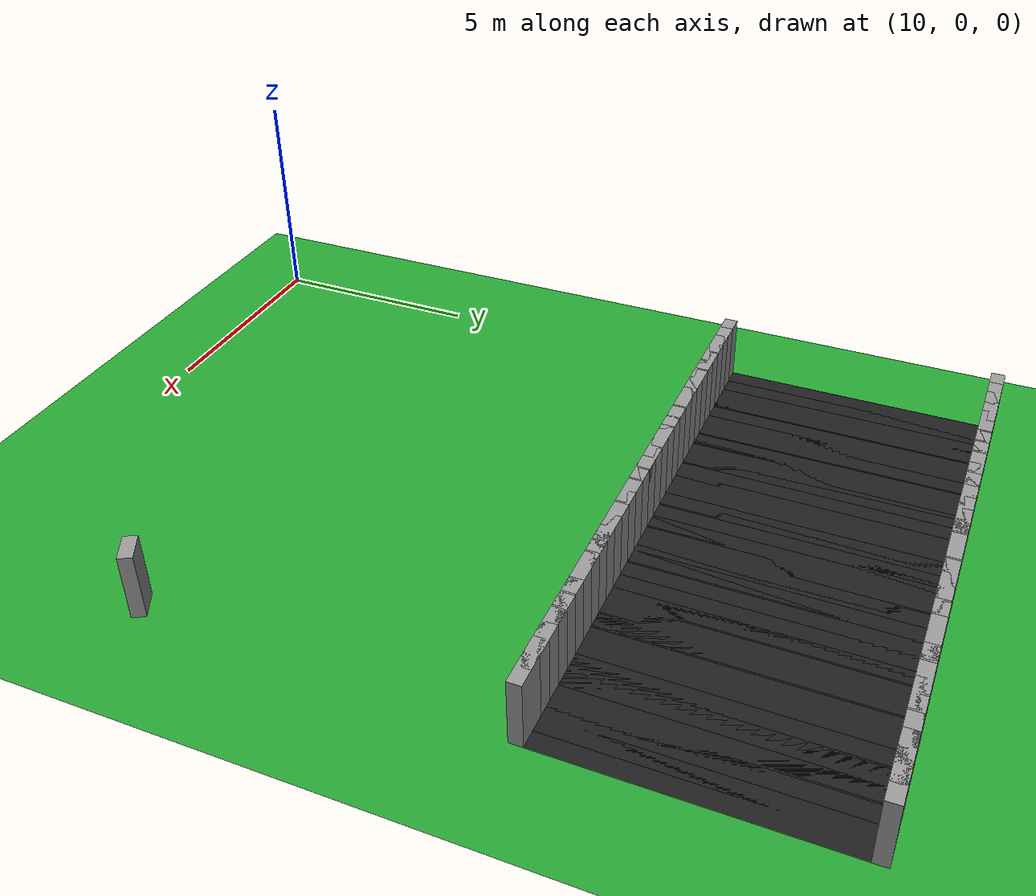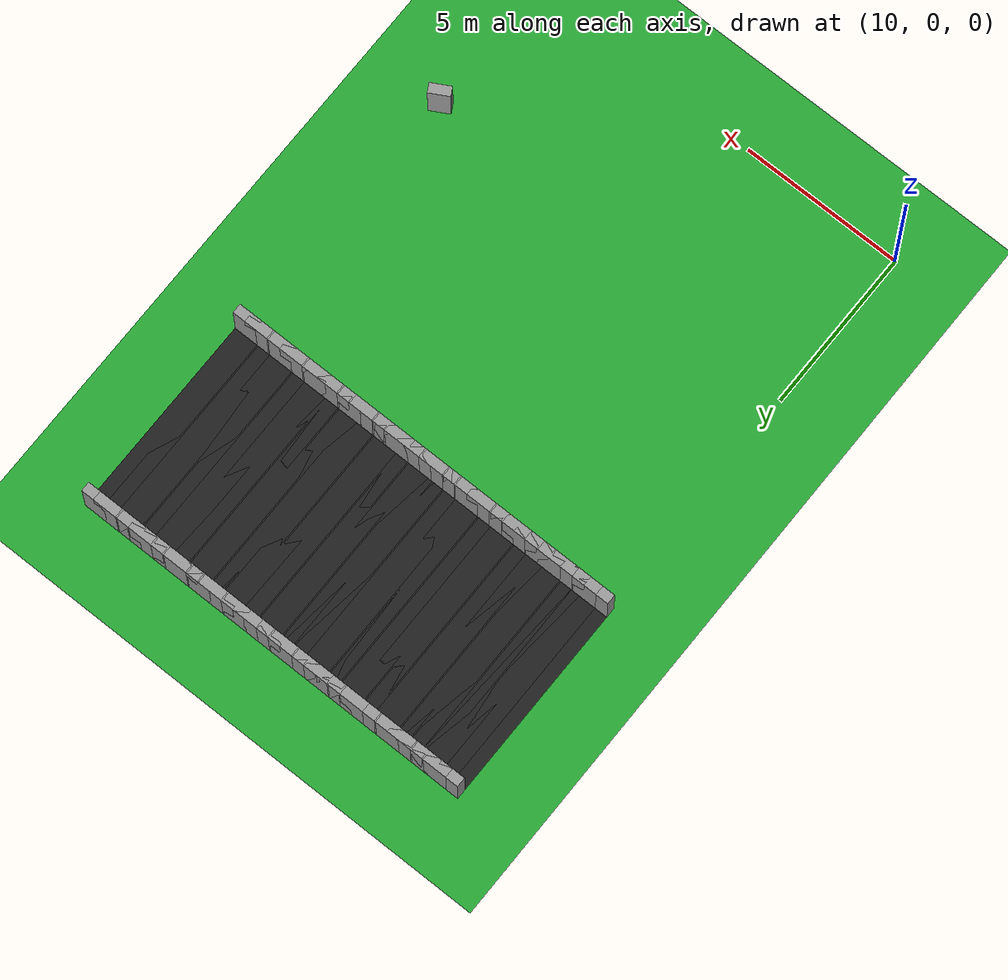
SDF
<sdf version="1.6">
 <world name="loop_road">
  <include><uri>model://sun</uri></include>
  <model name="ground_plane">
   <static>true</static>
   <link name="link">
    <collision name="collision">
     <surface><friction><ode><mu>100</mu><mu2>50</mu2></ode></friction></surface>
     <geometry><plane><normal>0 0 1</normal><size>120 120</size></plane></geometry>
    </collision>
    <visual name="visual">
     <geometry><plane><normal>0 0 1</normal><size>120 120</size></plane></geometry>
     <material>
      <script><uri>file://media/materials/scripts/gazebo.material</uri><name>Gazebo/Green</name></script>
     </material>
    </visual>
   </link>
  </model>
  <model name="curbL_60">
   <static>true</static>
   <pose>22.299 4.265 0.750 0 0 0.50724</pose>
   <link name="link">
    <collision name="collision"><geometry><box><size>0.650 0.300 1.500</size></box></geometry></collision>
    <visual name="visual">
     <geometry><box><size>0.650 0.300 1.500</size></box></geometry>
     <material>
      <script><uri>file://media/materials/scripts/gazebo.material</uri><name>Gazebo/Grey</name></script>
     </material>
    </visual>
   </link>
  </model>
  <model name="asphalt_120">
   <static>true</static>
   <pose>22.285 15.588 0.005 0 0 3.14159</pose>
   <link name="link">
    <visual name="visual">
     <geometry><box><size>0.760 6.000 0.010</size></box></geometry>
     <material>
      <script><uri>file://media/materials/scripts/gazebo.material</uri><name>Gazebo/Black</name></script>
     </material>
    </visual>
   </link>
  </model>
  <model name="curbL_120">
   <static>true</static>
   <pose>22.285 12.438 0.750 0 0 3.14159</pose>
   <link name="link">
    <collision name="collision"><geometry><box><size>0.760 0.300 1.500</size></box></geometry></collision>
    <visual name="visual">
     <geometry><box><size>0.760 0.300 1.500</size></box></geometry>
     <material>
      <script><uri>file://media/materials/scripts/gazebo.material</uri><name>Gazebo/Grey</name></script>
     </material>
    </visual>
   </link>
  </model>
  <model name="curbR_120">
   <static>true</static>
   <pose>22.285 18.738 0.750 0 0 3.14159</pose>
   <link name="link">
    <collision name="collision"><geometry><box><size>0.760 0.300 1.500</size></box></geometry></collision>
    <visual name="visual">
     <geometry><box><size>0.760 0.300 1.500</size></box></geometry>
     <material>
      <script><uri>file://media/materials/scripts/gazebo.material</uri><name>Gazebo/Grey</name></script>
     </material>
    </visual>
   </link>
  </model>
  <model name="asphalt_121">
   <static>true</static>
   <pose>21.885 15.588 0.005 0 0 3.14159</pose>
   <link name="link">
    <visual name="visual">
     <geometry><box><size>0.760 6.000 0.010</size></box></geometry>
     <material>
      <script><uri>file://media/materials/scripts/gazebo.material</uri><name>Gazebo/Black</name></script>
     </material>
    </visual>
   </link>
  </model>
  <model name="curbL_121">
   <static>true</static>
   <pose>21.885 12.438 0.750 0 0 3.14159</pose>
   <link name="link">
    <collision name="collision"><geometry><box><size>0.760 0.300 1.500</size></box></geometry></collision>
    <visual name="visual">
     <geometry><box><size>0.760 0.300 1.500</size></box></geometry>
     <material>
      <script><uri>file://media/materials/scripts/gazebo.material</uri><name>Gazebo/Grey</name></script>
     </material>
    </visual>
   </link>
  </model>
  <model name="curbR_121">
   <static>true</static>
   <pose>21.885 18.738 0.750 0 0 3.14159</pose>
   <link name="link">
    <collision name="collision"><geometry><box><size>0.760 0.300 1.500</size></box></geometry></collision>
    <visual name="visual">
     <geometry><box><size>0.760 0.300 1.500</size></box></geometry>
     <material>
      <script><uri>file://media/materials/scripts/gazebo.material</uri><name>Gazebo/Grey</name></script>
     </material>
    </visual>
   </link>
  </model>
  <model name="asphalt_122">
   <static>true</static>
   <pose>21.485 15.588 0.005 0 0 3.14159</pose>
   <link name="link">
    <visual name="visual">
     <geometry><box><size>0.760 6.000 0.010</size></box></geometry>
     <material>
      <script><uri>file://media/materials/scripts/gazebo.material</uri><name>Gazebo/Black</name></script>
     </material>
    </visual>
   </link>
  </model>
  <model name="curbL_122">
   <static>true</static>
   <pose>21.485 12.438 0.750 0 0 3.14159</pose>
   <link name="link">
    <collision name="collision"><geometry><box><size>0.760 0.300 1.500</size></box></geometry></collision>
    <visual name="visual">
     <geometry><box><size>0.760 0.300 1.500</size></box></geometry>
     <material>
      <script><uri>file://media/materials/scripts/gazebo.material</uri><name>Gazebo/Grey</name></script>
     </material>
    </visual>
   </link>
  </model>
  <model name="curbR_122">
   <static>true</static>
   <pose>21.485 18.738 0.750 0 0 3.14159</pose>
   <link name="link">
    <collision name="collision"><geometry><box><size>0.760 0.300 1.500</size></box></geometry></collision>
    <visual name="visual">
     <geometry><box><size>0.760 0.300 1.500</size></box></geometry>
     <material>
      <script><uri>file://media/materials/scripts/gazebo.material</uri><name>Gazebo/Grey</name></script>
     </material>
    </visual>
   </link>
  </model>
  <model name="asphalt_123">
   <static>true</static>
   <pose>21.085 15.588 0.005 0 0 3.14159</pose>
   <link name="link">
    <visual name="visual">
     <geometry><box><size>0.760 6.000 0.010</size></box></geometry>
     <material>
      <script><uri>file://media/materials/scripts/gazebo.material</uri><name>Gazebo/Black</name></script>
     </material>
    </visual>
   </link>
  </model>
  <model name="curbL_123">
   <static>true</static>
   <pose>21.085 12.438 0.750 0 0 3.14159</pose>
   <link name="link">
    <collision name="collision"><geometry><box><size>0.760 0.300 1.500</size></box></geometry></collision>
    <visual name="visual">
     <geometry><box><size>0.760 0.300 1.500</size></box></geometry>
     <material>
      <script><uri>file://media/materials/scripts/gazebo.material</uri><name>Gazebo/Grey</name></script>
     </material>
    </visual>
   </link>
  </model>
  <model name="curbR_123">
   <static>true</static>
   <pose>21.085 18.738 0.750 0 0 3.14159</pose>
   <link name="link">
    <collision name="collision"><geometry><box><size>0.760 0.300 1.500</size></box></geometry></collision>
    <visual name="visual">
     <geometry><box><size>0.760 0.300 1.500</size></box></geometry>
     <material>
      <script><uri>file://media/materials/scripts/gazebo.material</uri><name>Gazebo/Grey</name></script>
     </material>
    </visual>
   </link>
  </model>
  <model name="asphalt_124">
   <static>true</static>
   <pose>20.685 15.588 0.005 0 0 3.14159</pose>
   <link name="link">
    <visual name="visual">
     <geometry><box><size>0.760 6.000 0.010</size></box></geometry>
     <material>
      <script><uri>file://media/materials/scripts/gazebo.material</uri><name>Gazebo/Black</name></script>
     </material>
    </visual>
   </link>
  </model>
  <model name="curbL_124">
   <static>true</static>
   <pose>20.685 12.438 0.750 0 0 3.14159</pose>
   <link name="link">
    <collision name="collision"><geometry><box><size>0.760 0.300 1.500</size></box></geometry></collision>
    <visual name="visual">
     <geometry><box><size>0.760 0.300 1.500</size></box></geometry>
     <material>
      <script><uri>file://media/materials/scripts/gazebo.material</uri><name>Gazebo/Grey</name></script>
     </material>
    </visual>
   </link>
  </model>
  <model name="curbR_124">
   <static>true</static>
   <pose>20.685 18.738 0.750 0 0 3.14159</pose>
   <link name="link">
    <collision name="collision"><geometry><box><size>0.760 0.300 1.500</size></box></geometry></collision>
    <visual name="visual">
     <geometry><box><size>0.760 0.300 1.500</size></box></geometry>
     <material>
      <script><uri>file://media/materials/scripts/gazebo.material</uri><name>Gazebo/Grey</name></script>
     </material>
    </visual>
   </link>
  </model>
  <model name="asphalt_125">
   <static>true</static>
   <pose>20.285 15.588 0.005 0 0 3.14159</pose>
   <link name="link">
    <visual name="visual">
     <geometry><box><size>0.760 6.000 0.010</size></box></geometry>
     <material>
      <script><uri>file://media/materials/scripts/gazebo.material</uri><name>Gazebo/Black</name></script>
     </material>
    </visual>
   </link>
  </model>
  <model name="curbL_125">
   <static>true</static>
   <pose>20.285 12.438 0.750 0 0 3.14159</pose>
   <link name="link">
    <collision name="collision"><geometry><box><size>0.760 0.300 1.500</size></box></geometry></collision>
    <visual name="visual">
     <geometry><box><size>0.760 0.300 1.500</size></box></geometry>
     <material>
      <script><uri>file://media/materials/scripts/gazebo.material</uri><name>Gazebo/Grey</name></script>
     </material>
    </visual>
   </link>
  </model>
  <model name="curbR_125">
   <static>true</static>
   <pose>20.285 18.738 0.750 0 0 3.14159</pose>
   <link name="link">
    <collision name="collision"><geometry><box><size>0.760 0.300 1.500</size></box></geometry></collision>
    <visual name="visual">
     <geometry><box><size>0.760 0.300 1.500</size></box></geometry>
     <material>
      <script><uri>file://media/materials/scripts/gazebo.material</uri><name>Gazebo/Grey</name></script>
     </material>
    </visual>
   </link>
  </model>
  <model name="asphalt_126">
   <static>true</static>
   <pose>19.885 15.588 0.005 0 0 3.14159</pose>
   <link name="link">
    <visual name="visual">
     <geometry><box><size>0.760 6.000 0.010</size></box></geometry>
     <material>
      <script><uri>file://media/materials/scripts/gazebo.material</uri><name>Gazebo/Black</name></script>
     </material>
    </visual>
   </link>
  </model>
  <model name="curbL_126">
   <static>true</static>
   <pose>19.885 12.438 0.750 0 0 3.14159</pose>
   <link name="link">
    <collision name="collision"><geometry><box><size>0.760 0.300 1.500</size></box></geometry></collision>
    <visual name="visual">
     <geometry><box><size>0.760 0.300 1.500</size></box></geometry>
     <material>
      <script><uri>file://media/materials/scripts/gazebo.material</uri><name>Gazebo/Grey</name></script>
     </material>
    </visual>
   </link>
  </model>
  <model name="curbR_126">
   <static>true</static>
   <pose>19.885 18.738 0.750 0 0 3.14159</pose>
   <link name="link">
    <collision name="collision"><geometry><box><size>0.760 0.300 1.500</size></box></geometry></collision>
    <visual name="visual">
     <geometry><box><size>0.760 0.300 1.500</size></box></geometry>
     <material>
      <script><uri>file://media/materials/scripts/gazebo.material</uri><name>Gazebo/Grey</name></script>
     </material>
    </visual>
   </link>
  </model>
  <model name="asphalt_127">
   <static>true</static>
   <pose>19.485 15.588 0.005 0 0 3.14159</pose>
   <link name="link">
    <visual name="visual">
     <geometry><box><size>0.760 6.000 0.010</size></box></geometry>
     <material>
      <script><uri>file://media/materials/scripts/gazebo.material</uri><name>Gazebo/Black</name></script>
     </material>
    </visual>
   </link>
  </model>
  <model name="curbL_127">
   <static>true</static>
   <pose>19.485 12.438 0.750 0 0 3.14159</pose>
   <link name="link">
    <collision name="collision"><geometry><box><size>0.760 0.300 1.500</size></box></geometry></collision>
    <visual name="visual">
     <geometry><box><size>0.760 0.300 1.500</size></box></geometry>
     <material>
      <script><uri>file://media/materials/scripts/gazebo.material</uri><name>Gazebo/Grey</name></script>
     </material>
    </visual>
   </link>
  </model>
  <model name="curbR_127">
   <static>true</static>
   <pose>19.485 18.738 0.750 0 0 3.14159</pose>
   <link name="link">
    <collision name="collision"><geometry><box><size>0.760 0.300 1.500</size></box></geometry></collision>
    <visual name="visual">
     <geometry><box><size>0.760 0.300 1.500</size></box></geometry>
     <material>
      <script><uri>file://media/materials/scripts/gazebo.material</uri><name>Gazebo/Grey</name></script>
     </material>
    </visual>
   </link>
  </model>
  <model name="asphalt_128">
   <static>true</static>
   <pose>19.085 15.588 0.005 0 0 3.14159</pose>
   <link name="link">
    <visual name="visual">
     <geometry><box><size>0.760 6.000 0.010</size></box></geometry>
     <material>
      <script><uri>file://media/materials/scripts/gazebo.material</uri><name>Gazebo/Black</name></script>
     </material>
    </visual>
   </link>
  </model>
  <model name="curbL_128">
   <static>true</static>
   <pose>19.085 12.438 0.750 0 0 3.14159</pose>
   <link name="link">
    <collision name="collision"><geometry><box><size>0.760 0.300 1.500</size></box></geometry></collision>
    <visual name="visual">
     <geometry><box><size>0.760 0.300 1.500</size></box></geometry>
     <material>
      <script><uri>file://media/materials/scripts/gazebo.material</uri><name>Gazebo/Grey</name></script>
     </material>
    </visual>
   </link>
  </model>
  <model name="curbR_128">
   <static>true</static>
   <pose>19.085 18.738 0.750 0 0 3.14159</pose>
   <link name="link">
    <collision name="collision"><geometry><box><size>0.760 0.300 1.500</size></box></geometry></collision>
    <visual name="visual">
     <geometry><box><size>0.760 0.300 1.500</size></box></geometry>
     <material>
      <script><uri>file://media/materials/scripts/gazebo.material</uri><name>Gazebo/Grey</name></script>
     </material>
    </visual>
   </link>
  </model>
  <model name="asphalt_129">
   <static>true</static>
   <pose>18.685 15.588 0.005 0 0 3.14159</pose>
   <link name="link">
    <visual name="visual">
     <geometry><box><size>0.760 6.000 0.010</size></box></geometry>
     <material>
      <script><uri>file://media/materials/scripts/gazebo.material</uri><name>Gazebo/Black</name></script>
     </material>
    </visual>
   </link>
  </model>
  <model name="curbL_129">
   <static>true</static>
   <pose>18.685 12.438 0.750 0 0 3.14159</pose>
   <link name="link">
    <collision name="collision"><geometry><box><size>0.760 0.300 1.500</size></box></geometry></collision>
    <visual name="visual">
     <geometry><box><size>0.760 0.300 1.500</size></box></geometry>
     <material>
      <script><uri>file://media/materials/scripts/gazebo.material</uri><name>Gazebo/Grey</name></script>
     </material>
    </visual>
   </link>
  </model>
  <model name="curbR_129">
   <static>true</static>
   <pose>18.685 18.738 0.750 0 0 3.14159</pose>
   <link name="link">
    <collision name="collision"><geometry><box><size>0.760 0.300 1.500</size></box></geometry></collision>
    <visual name="visual">
     <geometry><box><size>0.760 0.300 1.500</size></box></geometry>
     <material>
      <script><uri>file://media/materials/scripts/gazebo.material</uri><name>Gazebo/Grey</name></script>
     </material>
    </visual>
   </link>
  </model>
  <model name="asphalt_130">
   <static>true</static>
   <pose>18.285 15.588 0.005 0 0 3.14159</pose>
   <link name="link">
    <visual name="visual">
     <geometry><box><size>0.760 6.000 0.010</size></box></geometry>
     <material>
      <script><uri>file://media/materials/scripts/gazebo.material</uri><name>Gazebo/Black</name></script>
     </material>
    </visual>
   </link>
  </model>
  <model name="curbL_130">
   <static>true</static>
   <pose>18.285 12.438 0.750 0 0 3.14159</pose>
   <link name="link">
    <collision name="collision"><geometry><box><size>0.760 0.300 1.500</size></box></geometry></collision>
    <visual name="visual">
     <geometry><box><size>0.760 0.300 1.500</size></box></geometry>
     <material>
      <script><uri>file://media/materials/scripts/gazebo.material</uri><name>Gazebo/Grey</name></script>
     </material>
    </visual>
   </link>
  </model>
  <model name="curbR_130">
   <static>true</static>
   <pose>18.285 18.738 0.750 0 0 3.14159</pose>
   <link name="link">
    <collision name="collision"><geometry><box><size>0.760 0.300 1.500</size></box></geometry></collision>
    <visual name="visual">
     <geometry><box><size>0.760 0.300 1.500</size></box></geometry>
     <material>
      <script><uri>file://media/materials/scripts/gazebo.material</uri><name>Gazebo/Grey</name></script>
     </material>
    </visual>
   </link>
  </model>
  <model name="asphalt_131">
   <static>true</static>
   <pose>17.885 15.588 0.005 0 0 3.14159</pose>
   <link name="link">
    <visual name="visual">
     <geometry><box><size>0.760 6.000 0.010</size></box></geometry>
     <material>
      <script><uri>file://media/materials/scripts/gazebo.material</uri><name>Gazebo/Black</name></script>
     </material>
    </visual>
   </link>
  </model>
  <model name="curbL_131">
   <static>true</static>
   <pose>17.885 12.438 0.750 0 0 3.14159</pose>
   <link name="link">
    <collision name="collision"><geometry><box><size>0.760 0.300 1.500</size></box></geometry></collision>
    <visual name="visual">
     <geometry><box><size>0.760 0.300 1.500</size></box></geometry>
     <material>
      <script><uri>file://media/materials/scripts/gazebo.material</uri><name>Gazebo/Grey</name></script>
     </material>
    </visual>
   </link>
  </model>
  <model name="curbR_131">
   <static>true</static>
   <pose>17.885 18.738 0.750 0 0 3.14159</pose>
   <link name="link">
    <collision name="collision"><geometry><box><size>0.760 0.300 1.500</size></box></geometry></collision>
    <visual name="visual">
     <geometry><box><size>0.760 0.300 1.500</size></box></geometry>
     <material>
      <script><uri>file://media/materials/scripts/gazebo.material</uri><name>Gazebo/Grey</name></script>
     </material>
    </visual>
   </link>
  </model>
  <model name="asphalt_132">
   <static>true</static>
   <pose>17.485 15.588 0.005 0 0 3.14159</pose>
   <link name="link">
    <visual name="visual">
     <geometry><box><size>0.760 6.000 0.010</size></box></geometry>
     <material>
      <script><uri>file://media/materials/scripts/gazebo.material</uri><name>Gazebo/Black</name></script>
     </material>
    </visual>
   </link>
  </model>
  <model name="curbL_132">
   <static>true</static>
   <pose>17.485 12.438 0.750 0 0 3.14159</pose>
   <link name="link">
    <collision name="collision"><geometry><box><size>0.760 0.300 1.500</size></box></geometry></collision>
    <visual name="visual">
     <geometry><box><size>0.760 0.300 1.500</size></box></geometry>
     <material>
      <script><uri>file://media/materials/scripts/gazebo.material</uri><name>Gazebo/Grey</name></script>
     </material>
    </visual>
   </link>
  </model>
  <model name="curbR_132">
   <static>true</static>
   <pose>17.485 18.738 0.750 0 0 3.14159</pose>
   <link name="link">
    <collision name="collision"><geometry><box><size>0.760 0.300 1.500</size></box></geometry></collision>
    <visual name="visual">
     <geometry><box><size>0.760 0.300 1.500</size></box></geometry>
     <material>
      <script><uri>file://media/materials/scripts/gazebo.material</uri><name>Gazebo/Grey</name></script>
     </material>
    </visual>
   </link>
  </model>
  <model name="asphalt_133">
   <static>true</static>
   <pose>17.085 15.588 0.005 0 0 3.14159</pose>
   <link name="link">
    <visual name="visual">
     <geometry><box><size>0.760 6.000 0.010</size></box></geometry>
     <material>
      <script><uri>file://media/materials/scripts/gazebo.material</uri><name>Gazebo/Black</name></script>
     </material>
    </visual>
   </link>
  </model>
  <model name="curbL_133">
   <static>true</static>
   <pose>17.085 12.438 0.750 0 0 3.14159</pose>
   <link name="link">
    <collision name="collision"><geometry><box><size>0.760 0.300 1.500</size></box></geometry></collision>
    <visual name="visual">
     <geometry><box><size>0.760 0.300 1.500</size></box></geometry>
     <material>
      <script><uri>file://media/materials/scripts/gazebo.material</uri><name>Gazebo/Grey</name></script>
     </material>
    </visual>
   </link>
  </model>
  <model name="curbR_133">
   <static>true</static>
   <pose>17.085 18.738 0.750 0 0 3.14159</pose>
   <link name="link">
    <collision name="collision"><geometry><box><size>0.760 0.300 1.500</size></box></geometry></collision>
    <visual name="visual">
     <geometry><box><size>0.760 0.300 1.500</size></box></geometry>
     <material>
      <script><uri>file://media/materials/scripts/gazebo.material</uri><name>Gazebo/Grey</name></script>
     </material>
    </visual>
   </link>
  </model>
  <model name="asphalt_134">
   <static>true</static>
   <pose>16.685 15.588 0.005 0 0 3.14159</pose>
   <link name="link">
    <visual name="visual">
     <geometry><box><size>0.760 6.000 0.010</size></box></geometry>
     <material>
      <script><uri>file://media/materials/scripts/gazebo.material</uri><name>Gazebo/Black</name></script>
     </material>
    </visual>
   </link>
  </model>
  <model name="curbL_134">
   <static>true</static>
   <pose>16.685 12.438 0.750 0 0 3.14159</pose>
   <link name="link">
    <collision name="collision"><geometry><box><size>0.760 0.300 1.500</size></box></geometry></collision>
    <visual name="visual">
     <geometry><box><size>0.760 0.300 1.500</size></box></geometry>
     <material>
      <script><uri>file://media/materials/scripts/gazebo.material</uri><name>Gazebo/Grey</name></script>
     </material>
    </visual>
   </link>
  </model>
  <model name="curbR_134">
   <static>true</static>
   <pose>16.685 18.738 0.750 0 0 3.14159</pose>
   <link name="link">
    <collision name="collision"><geometry><box><size>0.760 0.300 1.500</size></box></geometry></collision>
    <visual name="visual">
     <geometry><box><size>0.760 0.300 1.500</size></box></geometry>
     <material>
      <script><uri>file://media/materials/scripts/gazebo.material</uri><name>Gazebo/Grey</name></script>
     </material>
    </visual>
   </link>
  </model>
  <model name="asphalt_135">
   <static>true</static>
   <pose>16.285 15.588 0.005 0 0 3.14159</pose>
   <link name="link">
    <visual name="visual">
     <geometry><box><size>0.760 6.000 0.010</size></box></geometry>
     <material>
      <script><uri>file://media/materials/scripts/gazebo.material</uri><name>Gazebo/Black</name></script>
     </material>
    </visual>
   </link>
  </model>
  <model name="curbL_135">
   <static>true</static>
   <pose>16.285 12.438 0.750 0 0 3.14159</pose>
   <link name="link">
    <collision name="collision"><geometry><box><size>0.760 0.300 1.500</size></box></geometry></collision>
    <visual name="visual">
     <geometry><box><size>0.760 0.300 1.500</size></box></geometry>
     <material>
      <script><uri>file://media/materials/scripts/gazebo.material</uri><name>Gazebo/Grey</name></script>
     </material>
    </visual>
   </link>
  </model>
  <model name="curbR_135">
   <static>true</static>
   <pose>16.285 18.738 0.750 0 0 3.14159</pose>
   <link name="link">
    <collision name="collision"><geometry><box><size>0.760 0.300 1.500</size></box></geometry></collision>
    <visual name="visual">
     <geometry><box><size>0.760 0.300 1.500</size></box></geometry>
     <material>
      <script><uri>file://media/materials/scripts/gazebo.material</uri><name>Gazebo/Grey</name></script>
     </material>
    </visual>
   </link>
  </model>
  <model name="asphalt_136">
   <static>true</static>
   <pose>15.885 15.588 0.005 0 0 3.14159</pose>
   <link name="link">
    <visual name="visual">
     <geometry><box><size>0.760 6.000 0.010</size></box></geometry>
     <material>
      <script><uri>file://media/materials/scripts/gazebo.material</uri><name>Gazebo/Black</name></script>
     </material>
    </visual>
   </link>
  </model>
  <model name="curbL_136">
   <static>true</static>
   <pose>15.885 12.438 0.750 0 0 3.14159</pose>
   <link name="link">
    <collision name="collision"><geometry><box><size>0.760 0.300 1.500</size></box></geometry></collision>
    <visual name="visual">
     <geometry><box><size>0.760 0.300 1.500</size></box></geometry>
     <material>
      <script><uri>file://media/materials/scripts/gazebo.material</uri><name>Gazebo/Grey</name></script>
     </material>
    </visual>
   </link>
  </model>
  <model name="curbR_136">
   <static>true</static>
   <pose>15.885 18.738 0.750 0 0 3.14159</pose>
   <link name="link">
    <collision name="collision"><geometry><box><size>0.760 0.300 1.500</size></box></geometry></collision>
    <visual name="visual">
     <geometry><box><size>0.760 0.300 1.500</size></box></geometry>
     <material>
      <script><uri>file://media/materials/scripts/gazebo.material</uri><name>Gazebo/Grey</name></script>
     </material>
    </visual>
   </link>
  </model>
  <model name="asphalt_137">
   <static>true</static>
   <pose>15.485 15.588 0.005 0 0 3.14159</pose>
   <link name="link">
    <visual name="visual">
     <geometry><box><size>0.760 6.000 0.010</size></box></geometry>
     <material>
      <script><uri>file://media/materials/scripts/gazebo.material</uri><name>Gazebo/Black</name></script>
     </material>
    </visual>
   </link>
  </model>
  <model name="curbL_137">
   <static>true</static>
   <pose>15.485 12.438 0.750 0 0 3.14159</pose>
   <link name="link">
    <collision name="collision"><geometry><box><size>0.760 0.300 1.500</size></box></geometry></collision>
    <visual name="visual">
     <geometry><box><size>0.760 0.300 1.500</size></box></geometry>
     <material>
      <script><uri>file://media/materials/scripts/gazebo.material</uri><name>Gazebo/Grey</name></script>
     </material>
    </visual>
   </link>
  </model>
  <model name="curbR_137">
   <static>true</static>
   <pose>15.485 18.738 0.750 0 0 3.14159</pose>
   <link name="link">
    <collision name="collision"><geometry><box><size>0.760 0.300 1.500</size></box></geometry></collision>
    <visual name="visual">
     <geometry><box><size>0.760 0.300 1.500</size></box></geometry>
     <material>
      <script><uri>file://media/materials/scripts/gazebo.material</uri><name>Gazebo/Grey</name></script>
     </material>
    </visual>
   </link>
  </model>
  <model name="asphalt_138">
   <static>true</static>
   <pose>15.085 15.588 0.005 0 0 3.14159</pose>
   <link name="link">
    <visual name="visual">
     <geometry><box><size>0.760 6.000 0.010</size></box></geometry>
     <material>
      <script><uri>file://media/materials/scripts/gazebo.material</uri><name>Gazebo/Black</name></script>
     </material>
    </visual>
   </link>
  </model>
  <model name="curbL_138">
   <static>true</static>
   <pose>15.085 12.438 0.750 0 0 3.14159</pose>
   <link name="link">
    <collision name="collision"><geometry><box><size>0.760 0.300 1.500</size></box></geometry></collision>
    <visual name="visual">
     <geometry><box><size>0.760 0.300 1.500</size></box></geometry>
     <material>
      <script><uri>file://media/materials/scripts/gazebo.material</uri><name>Gazebo/Grey</name></script>
     </material>
    </visual>
   </link>
  </model>
  <model name="curbR_138">
   <static>true</static>
   <pose>15.085 18.738 0.750 0 0 3.14159</pose>
   <link name="link">
    <collision name="collision"><geometry><box><size>0.760 0.300 1.500</size></box></geometry></collision>
    <visual name="visual">
     <geometry><box><size>0.760 0.300 1.500</size></box></geometry>
     <material>
      <script><uri>file://media/materials/scripts/gazebo.material</uri><name>Gazebo/Grey</name></script>
     </material>
    </visual>
   </link>
  </model>
  <model name="asphalt_139">
   <static>true</static>
   <pose>14.685 15.588 0.005 0 0 3.14159</pose>
   <link name="link">
    <visual name="visual">
     <geometry><box><size>0.760 6.000 0.010</size></box></geometry>
     <material>
      <script><uri>file://media/materials/scripts/gazebo.material</uri><name>Gazebo/Black</name></script>
     </material>
    </visual>
   </link>
  </model>
  <model name="curbL_139">
   <static>true</static>
   <pose>14.685 12.438 0.750 0 0 3.14159</pose>
   <link name="link">
    <collision name="collision"><geometry><box><size>0.760 0.300 1.500</size></box></geometry></collision>
    <visual name="visual">
     <geometry><box><size>0.760 0.300 1.500</size></box></geometry>
     <material>
      <script><uri>file://media/materials/scripts/gazebo.material</uri><name>Gazebo/Grey</name></script>
     </material>
    </visual>
   </link>
  </model>
  <model name="curbR_139">
   <static>true</static>
   <pose>14.685 18.738 0.750 0 0 3.14159</pose>
   <link name="link">
    <collision name="collision"><geometry><box><size>0.760 0.300 1.500</size></box></geometry></collision>
    <visual name="visual">
     <geometry><box><size>0.760 0.300 1.500</size></box></geometry>
     <material>
      <script><uri>file://media/materials/scripts/gazebo.material</uri><name>Gazebo/Grey</name></script>
     </material>
    </visual>
   </link>
  </model>
  <model name="asphalt_140">
   <static>true</static>
   <pose>14.285 15.588 0.005 0 0 3.14159</pose>
   <link name="link">
    <visual name="visual">
     <geometry><box><size>0.760 6.000 0.010</size></box></geometry>
     <material>
      <script><uri>file://media/materials/scripts/gazebo.material</uri><name>Gazebo/Black</name></script>
     </material>
    </visual>
   </link>
  </model>
  <model name="curbL_140">
   <static>true</static>
   <pose>14.285 12.438 0.750 0 0 3.14159</pose>
   <link name="link">
    <collision name="collision"><geometry><box><size>0.760 0.300 1.500</size></box></geometry></collision>
    <visual name="visual">
     <geometry><box><size>0.760 0.300 1.500</size></box></geometry>
     <material>
      <script><uri>file://media/materials/scripts/gazebo.material</uri><name>Gazebo/Grey</name></script>
     </material>
    </visual>
   </link>
  </model>
  <model name="curbR_140">
   <static>true</static>
   <pose>14.285 18.738 0.750 0 0 3.14159</pose>
   <link name="link">
    <collision name="collision"><geometry><box><size>0.760 0.300 1.500</size></box></geometry></collision>
    <visual name="visual">
     <geometry><box><size>0.760 0.300 1.500</size></box></geometry>
     <material>
      <script><uri>file://media/materials/scripts/gazebo.material</uri><name>Gazebo/Grey</name></script>
     </material>
    </visual>
   </link>
  </model>
  <model name="asphalt_141">
   <static>true</static>
   <pose>13.885 15.588 0.005 0 0 3.14159</pose>
   <link name="link">
    <visual name="visual">
     <geometry><box><size>0.760 6.000 0.010</size></box></geometry>
     <material>
      <script><uri>file://media/materials/scripts/gazebo.material</uri><name>Gazebo/Black</name></script>
     </material>
    </visual>
   </link>
  </model>
  <model name="curbL_141">
   <static>true</static>
   <pose>13.885 12.438 0.750 0 0 3.14159</pose>
   <link name="link">
    <collision name="collision"><geometry><box><size>0.760 0.300 1.500</size></box></geometry></collision>
    <visual name="visual">
     <geometry><box><size>0.760 0.300 1.500</size></box></geometry>
     <material>
      <script><uri>file://media/materials/scripts/gazebo.material</uri><name>Gazebo/Grey</name></script>
     </material>
    </visual>
   </link>
  </model>
  <model name="curbR_141">
   <static>true</static>
   <pose>13.885 18.738 0.750 0 0 3.14159</pose>
   <link name="link">
    <collision name="collision"><geometry><box><size>0.760 0.300 1.500</size></box></geometry></collision>
    <visual name="visual">
     <geometry><box><size>0.760 0.300 1.500</size></box></geometry>
     <material>
      <script><uri>file://media/materials/scripts/gazebo.material</uri><name>Gazebo/Grey</name></script>
     </material>
    </visual>
   </link>
  </model>
  <model name="asphalt_142">
   <static>true</static>
   <pose>13.485 15.588 0.005 0 0 3.14159</pose>
   <link name="link">
    <visual name="visual">
     <geometry><box><size>0.760 6.000 0.010</size></box></geometry>
     <material>
      <script><uri>file://media/materials/scripts/gazebo.material</uri><name>Gazebo/Black</name></script>
     </material>
    </visual>
   </link>
  </model>
  <model name="curbL_142">
   <static>true</static>
   <pose>13.485 12.438 0.750 0 0 3.14159</pose>
   <link name="link">
    <collision name="collision"><geometry><box><size>0.760 0.300 1.500</size></box></geometry></collision>
    <visual name="visual">
     <geometry><box><size>0.760 0.300 1.500</size></box></geometry>
     <material>
      <script><uri>file://media/materials/scripts/gazebo.material</uri><name>Gazebo/Grey</name></script>
     </material>
    </visual>
   </link>
  </model>
  <model name="curbR_142">
   <static>true</static>
   <pose>13.485 18.738 0.750 0 0 3.14159</pose>
   <link name="link">
    <collision name="collision"><geometry><box><size>0.760 0.300 1.500</size></box></geometry></collision>
    <visual name="visual">
     <geometry><box><size>0.760 0.300 1.500</size></box></geometry>
     <material>
      <script><uri>file://media/materials/scripts/gazebo.material</uri><name>Gazebo/Grey</name></script>
     </material>
    </visual>
   </link>
  </model>
  <model name="asphalt_143">
   <static>true</static>
   <pose>13.085 15.588 0.005 0 0 3.14159</pose>
   <link name="link">
    <visual name="visual">
     <geometry><box><size>0.760 6.000 0.010</size></box></geometry>
     <material>
      <script><uri>file://media/materials/scripts/gazebo.material</uri><name>Gazebo/Black</name></script>
     </material>
    </visual>
   </link>
  </model>
  <model name="curbL_143">
   <static>true</static>
   <pose>13.085 12.438 0.750 0 0 3.14159</pose>
   <link name="link">
    <collision name="collision"><geometry><box><size>0.760 0.300 1.500</size></box></geometry></collision>
    <visual name="visual">
     <geometry><box><size>0.760 0.300 1.500</size></box></geometry>
     <material>
      <script><uri>file://media/materials/scripts/gazebo.material</uri><name>Gazebo/Grey</name></script>
     </material>
    </visual>
   </link>
  </model>
  <model name="curbR_143">
   <static>true</static>
   <pose>13.085 18.738 0.750 0 0 3.14159</pose>
   <link name="link">
    <collision name="collision"><geometry><box><size>0.760 0.300 1.500</size></box></geometry></collision>
    <visual name="visual">
     <geometry><box><size>0.760 0.300 1.500</size></box></geometry>
     <material>
      <script><uri>file://media/materials/scripts/gazebo.material</uri><name>Gazebo/Grey</name></script>
     </material>
    </visual>
   </link>
  </model>
  <model name="asphalt_144">
   <static>true</static>
   <pose>12.685 15.588 0.005 0 0 3.14159</pose>
   <link name="link">
    <visual name="visual">
     <geometry><box><size>0.760 6.000 0.010</size></box></geometry>
     <material>
      <script><uri>file://media/materials/scripts/gazebo.material</uri><name>Gazebo/Black</name></script>
     </material>
    </visual>
   </link>
  </model>
  <model name="curbL_144">
   <static>true</static>
   <pose>12.685 12.438 0.750 0 0 3.14159</pose>
   <link name="link">
    <collision name="collision"><geometry><box><size>0.760 0.300 1.500</size></box></geometry></collision>
    <visual name="visual">
     <geometry><box><size>0.760 0.300 1.500</size></box></geometry>
     <material>
      <script><uri>file://media/materials/scripts/gazebo.material</uri><name>Gazebo/Grey</name></script>
     </material>
    </visual>
   </link>
  </model>
  <model name="curbR_144">
   <static>true</static>
   <pose>12.685 18.738 0.750 0 0 3.14159</pose>
   <link name="link">
    <collision name="collision"><geometry><box><size>0.760 0.300 1.500</size></box></geometry></collision>
    <visual name="visual">
     <geometry><box><size>0.760 0.300 1.500</size></box></geometry>
     <material>
      <script><uri>file://media/materials/scripts/gazebo.material</uri><name>Gazebo/Grey</name></script>
     </material>
    </visual>
   </link>
  </model>
  <model name="asphalt_145">
   <static>true</static>
   <pose>12.285 15.588 0.005 0 0 3.14159</pose>
   <link name="link">
    <visual name="visual">
     <geometry><box><size>0.760 6.000 0.010</size></box></geometry>
     <material>
      <script><uri>file://media/materials/scripts/gazebo.material</uri><name>Gazebo/Black</name></script>
     </material>
    </visual>
   </link>
  </model>
  <model name="curbL_145">
   <static>true</static>
   <pose>12.285 12.438 0.750 0 0 3.14159</pose>
   <link name="link">
    <collision name="collision"><geometry><box><size>0.760 0.300 1.500</size></box></geometry></collision>
    <visual name="visual">
     <geometry><box><size>0.760 0.300 1.500</size></box></geometry>
     <material>
      <script><uri>file://media/materials/scripts/gazebo.material</uri><name>Gazebo/Grey</name></script>
     </material>
    </visual>
   </link>
  </model>
  <model name="curbR_145">
   <static>true</static>
   <pose>12.285 18.738 0.750 0 0 3.14159</pose>
   <link name="link">
    <collision name="collision"><geometry><box><size>0.760 0.300 1.500</size></box></geometry></collision>
    <visual name="visual">
     <geometry><box><size>0.760 0.300 1.500</size></box></geometry>
     <material>
      <script><uri>file://media/materials/scripts/gazebo.material</uri><name>Gazebo/Grey</name></script>
     </material>
    </visual>
   </link>
  </model>
  <model name="asphalt_146">
   <static>true</static>
   <pose>11.885 15.588 0.005 0 0 3.14159</pose>
   <link name="link">
    <visual name="visual">
     <geometry><box><size>0.760 6.000 0.010</size></box></geometry>
     <material>
      <script><uri>file://media/materials/scripts/gazebo.material</uri><name>Gazebo/Black</name></script>
     </material>
    </visual>
   </link>
  </model>
  <model name="curbL_146">
   <static>true</static>
   <pose>11.885 12.438 0.750 0 0 3.14159</pose>
   <link name="link">
    <collision name="collision"><geometry><box><size>0.760 0.300 1.500</size></box></geometry></collision>
    <visual name="visual">
     <geometry><box><size>0.760 0.300 1.500</size></box></geometry>
     <material>
      <script><uri>file://media/materials/scripts/gazebo.material</uri><name>Gazebo/Grey</name></script>
     </material>
    </visual>
   </link>
  </model>
  <model name="curbR_146">
   <static>true</static>
   <pose>11.885 18.738 0.750 0 0 3.14159</pose>
   <link name="link">
    <collision name="collision"><geometry><box><size>0.760 0.300 1.500</size></box></geometry></collision>
    <visual name="visual">
     <geometry><box><size>0.760 0.300 1.500</size></box></geometry>
     <material>
      <script><uri>file://media/materials/scripts/gazebo.material</uri><name>Gazebo/Grey</name></script>
     </material>
    </visual>
   </link>
  </model>
  <model name="asphalt_147">
   <static>true</static>
   <pose>11.485 15.588 0.005 0 0 3.14159</pose>
   <link name="link">
    <visual name="visual">
     <geometry><box><size>0.760 6.000 0.010</size></box></geometry>
     <material>
      <script><uri>file://media/materials/scripts/gazebo.material</uri><name>Gazebo/Black</name></script>
     </material>
    </visual>
   </link>
  </model>
  <model name="curbL_147">
   <static>true</static>
   <pose>11.485 12.438 0.750 0 0 3.14159</pose>
   <link name="link">
    <collision name="collision"><geometry><box><size>0.760 0.300 1.500</size></box></geometry></collision>
    <visual name="visual">
     <geometry><box><size>0.760 0.300 1.500</size></box></geometry>
     <material>
      <script><uri>file://media/materials/scripts/gazebo.material</uri><name>Gazebo/Grey</name></script>
     </material>
    </visual>
   </link>
  </model>
  <model name="curbR_147">
   <static>true</static>
   <pose>11.485 18.738 0.750 0 0 3.14159</pose>
   <link name="link">
    <collision name="collision"><geometry><box><size>0.760 0.300 1.500</size></box></geometry></collision>
    <visual name="visual">
     <geometry><box><size>0.760 0.300 1.500</size></box></geometry>
     <material>
      <script><uri>file://media/materials/scripts/gazebo.material</uri><name>Gazebo/Grey</name></script>
     </material>
    </visual>
   </link>
  </model>
  <model name="asphalt_148">
   <static>true</static>
   <pose>11.085 15.588 0.005 0 0 3.14159</pose>
   <link name="link">
    <visual name="visual">
     <geometry><box><size>0.760 6.000 0.010</size></box></geometry>
     <material>
      <script><uri>file://media/materials/scripts/gazebo.material</uri><name>Gazebo/Black</name></script>
     </material>
    </visual>
   </link>
  </model>
  <model name="curbL_148">
   <static>true</static>
   <pose>11.085 12.438 0.750 0 0 3.14159</pose>
   <link name="link">
    <collision name="collision"><geometry><box><size>0.760 0.300 1.500</size></box></geometry></collision>
    <visual name="visual">
     <geometry><box><size>0.760 0.300 1.500</size></box></geometry>
     <material>
      <script><uri>file://media/materials/scripts/gazebo.material</uri><name>Gazebo/Grey</name></script>
     </material>
    </visual>
   </link>
  </model>
  <model name="curbR_148">
   <static>true</static>
   <pose>11.085 18.738 0.750 0 0 3.14159</pose>
   <link name="link">
    <collision name="collision"><geometry><box><size>0.760 0.300 1.500</size></box></geometry></collision>
    <visual name="visual">
     <geometry><box><size>0.760 0.300 1.500</size></box></geometry>
     <material>
      <script><uri>file://media/materials/scripts/gazebo.material</uri><name>Gazebo/Grey</name></script>
     </material>
    </visual>
   </link>
  </model>
  <model name="asphalt_149">
   <static>true</static>
   <pose>10.685 15.588 0.005 0 0 3.14159</pose>
   <link name="link">
    <visual name="visual">
     <geometry><box><size>0.760 6.000 0.010</size></box></geometry>
     <material>
      <script><uri>file://media/materials/scripts/gazebo.material</uri><name>Gazebo/Black</name></script>
     </material>
    </visual>
   </link>
  </model>
  <model name="curbL_149">
   <static>true</static>
   <pose>10.685 12.438 0.750 0 0 3.14159</pose>
   <link name="link">
    <collision name="collision"><geometry><box><size>0.760 0.300 1.500</size></box></geometry></collision>
    <visual name="visual">
     <geometry><box><size>0.760 0.300 1.500</size></box></geometry>
     <material>
      <script><uri>file://media/materials/scripts/gazebo.material</uri><name>Gazebo/Grey</name></script>
     </material>
    </visual>
   </link>
  </model>
  <model name="curbR_149">
   <static>true</static>
   <pose>10.685 18.738 0.750 0 0 3.14159</pose>
   <link name="link">
    <collision name="collision"><geometry><box><size>0.760 0.300 1.500</size></box></geometry></collision>
    <visual name="visual">
     <geometry><box><size>0.760 0.300 1.500</size></box></geometry>
     <material>
      <script><uri>file://media/materials/scripts/gazebo.material</uri><name>Gazebo/Grey</name></script>
     </material>
    </visual>
   </link>
  </model>
  <model name="asphalt_150">
   <static>true</static>
   <pose>10.285 15.588 0.005 0 0 3.14159</pose>
   <link name="link">
    <visual name="visual">
     <geometry><box><size>0.760 6.000 0.010</size></box></geometry>
     <material>
      <script><uri>file://media/materials/scripts/gazebo.material</uri><name>Gazebo/Black</name></script>
     </material>
    </visual>
   </link>
  </model>
  <model name="curbL_150">
   <static>true</static>
   <pose>10.285 12.438 0.750 0 0 3.14159</pose>
   <link name="link">
    <collision name="collision"><geometry><box><size>0.760 0.300 1.500</size></box></geometry></collision>
    <visual name="visual">
     <geometry><box><size>0.760 0.300 1.500</size></box></geometry>
     <material>
      <script><uri>file://media/materials/scripts/gazebo.material</uri><name>Gazebo/Grey</name></script>
     </material>
    </visual>
   </link>
  </model>
  <model name="curbR_150">
   <static>true</static>
   <pose>10.285 18.738 0.750 0 0 3.14159</pose>
   <link name="link">
    <collision name="collision"><geometry><box><size>0.760 0.300 1.500</size></box></geometry></collision>
    <visual name="visual">
     <geometry><box><size>0.760 0.300 1.500</size></box></geometry>
     <material>
      <script><uri>file://media/materials/scripts/gazebo.material</uri><name>Gazebo/Grey</name></script>
     </material>
    </visual>
   </link>
  </model>
 </world>
</sdf>
